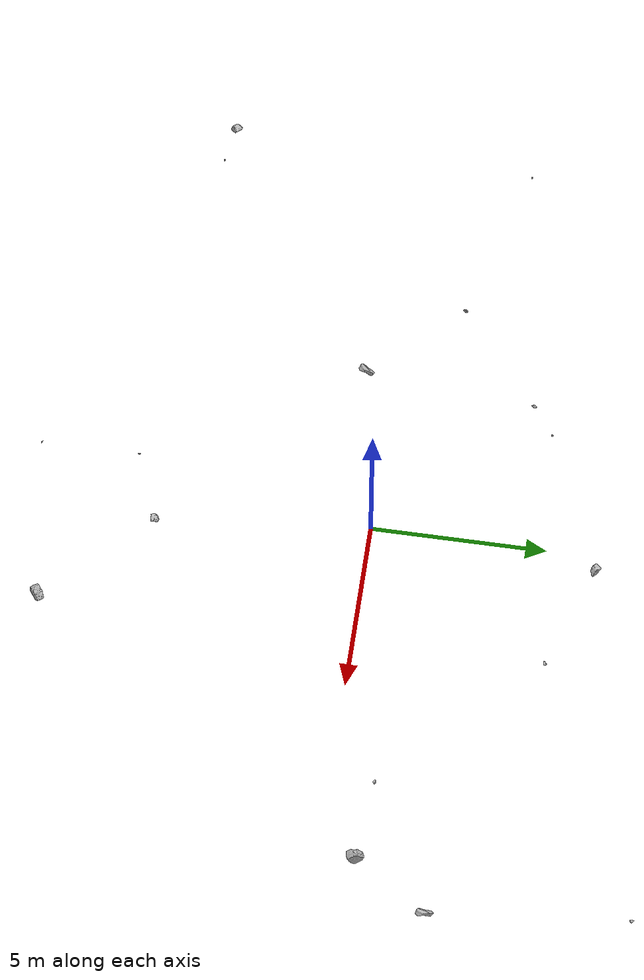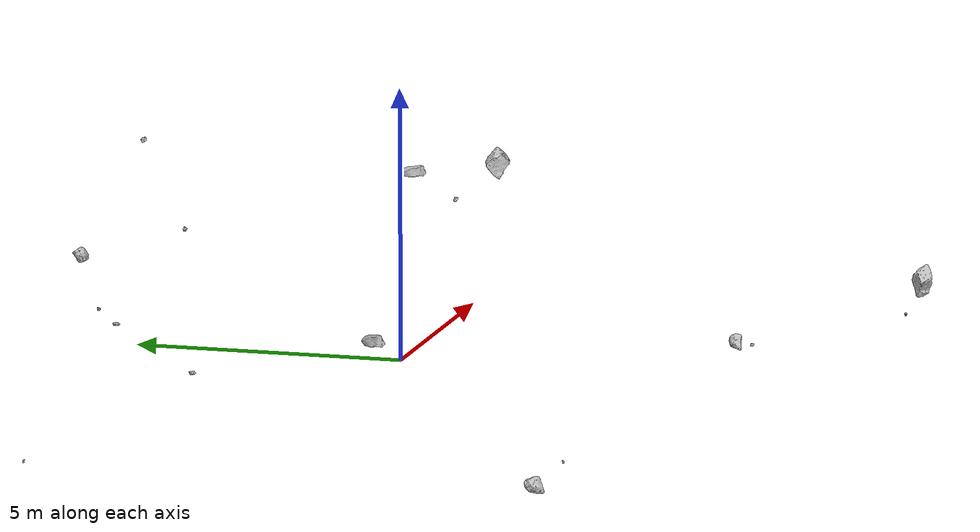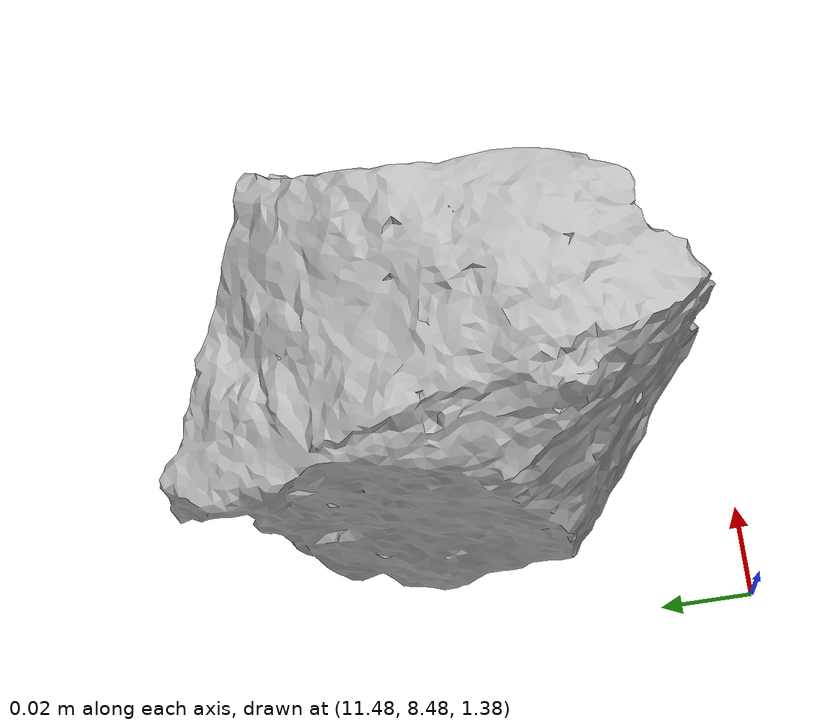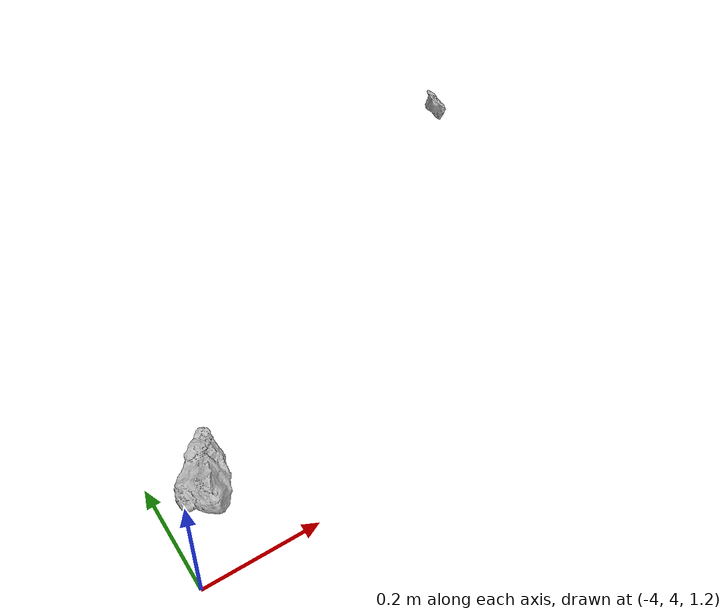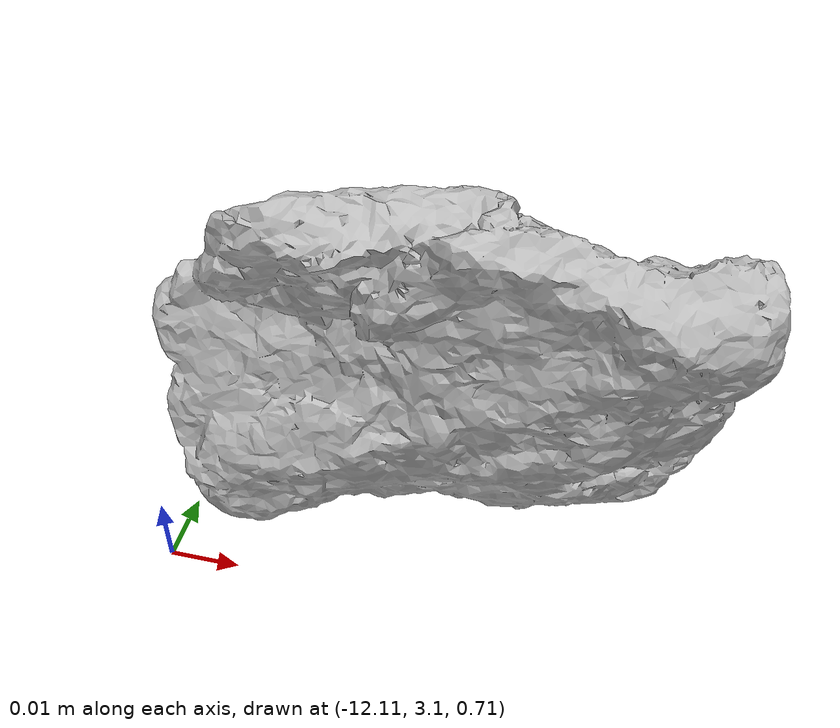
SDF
<sdf version="1.7">
 <world name="marsyard">
  <gravity>0 0 -9.81</gravity>
  <physics name="dart_physics" type="ignored">
   <max_step_size>0.003</max_step_size>
   <real_time_update_rate>333</real_time_update_rate>
   <real_time_factor>1.0</real_time_factor>
  </physics>
  <plugin filename="ignition-gazebo-physics-system" name="ignition::gazebo::systems::Physics"/>
  <plugin filename="ignition-gazebo-user-commands-system" name="ignition::gazebo::systems::UserCommands"/>
  <plugin filename="ignition-gazebo-scene-broadcaster-system" name="ignition::gazebo::systems::SceneBroadcaster"/>
  <plugin filename="ignition-gazebo-contact-system" name="ignition::gazebo::systems::Contact"/>
  <plugin filename="ignition-gazebo-sensors-system" name="ignition::gazebo::systems::Sensors">
   <render_engine>ogre2</render_engine>
  </plugin>
  <plugin filename="ignition-gazebo-imu-system" name="ignition::gazebo::systems::Imu"/>
  <plugin filename="ignition-gazebo-magnetometer-system" name="ignition::gazebo::systems::Magnetometer"/>
  <scene>
   <ambient>0.95 0.95 0.95 1</ambient>
   <background>0.70 0.70 0.70 1</background>
   <shadows>false</shadows>
  </scene>
  <light type="directional" name="sun">
   <cast_shadows>false</cast_shadows>
   <pose>0 0 30 0 0 0</pose>
   <diffuse>1 1 1 1</diffuse>
   <specular>0.15 0.15 0.15 1</specular>
   <direction>-0.35 0.1 -0.93</direction>
  </light>
  <model name="Rock_1">
   <static>true</static>
   <pose>8.3949 1.2759 1.2487 0.0000 0.0000 2.5398</pose>
   <link name="link">
    <visual name="visual">
     <geometry><mesh><uri>package://rock_generator/rocks_ws/rock_9/meshes/rock_9.obj</uri></mesh></geometry>
    </visual>
   </link>
  </model>
  <model name="Rock_2">
   <static>true</static>
   <pose>11.5206 8.5402 1.4487 0.0000 0.0000 -1.7034</pose>
   <link name="link">
    <visual name="visual">
     <geometry><mesh><uri>package://rock_generator/rocks_ws/rock_9/meshes/rock_9.obj</uri></mesh></geometry>
    </visual>
   </link>
  </model>
  <model name="Rock_3">
   <static>true</static>
   <pose>-3.0098 4.7396 1.3251 0.0000 0.0000 -1.9268</pose>
   <link name="link">
    <visual name="visual">
     <geometry><mesh><uri>package://rock_generator/rocks_ws/rock_5/meshes/rock_5.obj</uri></mesh></geometry>
    </visual>
    <collision name="collision">
     <geometry><mesh><uri>package://rock_generator/rocks_ws/rock_5/meshes/rock_5.obj</uri></mesh></geometry>
    </collision>
   </link>
  </model>
  <model name="Rock_4">
   <static>true</static>
   <pose>11.8126 3.0989 1.0200 0.0000 0.0000 -1.5470</pose>
   <link name="link">
    <visual name="visual">
     <geometry><mesh><uri>package://rock_generator/rocks_ws/rock_4/meshes/rock_4.obj</uri></mesh></geometry>
    </visual>
    <collision name="collision">
     <geometry><mesh><uri>package://rock_generator/rocks_ws/rock_4/meshes/rock_4.obj</uri></mesh></geometry>
    </collision>
   </link>
  </model>
  <model name="Rock_5">
   <static>true</static>
   <pose>4.1865 5.3841 1.2875 0.0000 0.0000 -2.6912</pose>
   <link name="link">
    <visual name="visual">
     <geometry><mesh><uri>package://rock_generator/rocks_ws/rock_6/meshes/rock_6.obj</uri></mesh></geometry>
    </visual>
    <collision name="collision">
     <geometry><mesh><uri>package://rock_generator/rocks_ws/rock_6/meshes/rock_6.obj</uri></mesh></geometry>
    </collision>
   </link>
  </model>
  <model name="Rock_8">
   <static>true</static>
   <pose>-12.0715 3.1136 0.7454 0.0000 0.0000 0.0661</pose>
   <link name="link">
    <visual name="visual">
     <geometry><mesh><uri>package://rock_generator/rocks_ws/rock_5/meshes/rock_5.obj</uri></mesh></geometry>
    </visual>
   </link>
  </model>
  <model name="Rock_9">
   <static>true</static>
   <pose>-3.9240 4.1240 1.2742 0.0000 0.0000 1.0582</pose>
   <link name="link">
    <visual name="visual">
     <geometry><mesh><uri>package://rock_generator/rocks_ws/rock_6/meshes/rock_6.obj</uri></mesh></geometry>
    </visual>
   </link>
  </model>
  <model name="Rock_10">
   <static>true</static>
   <pose>-0.5903 -9.4459 1.5285 0.0000 0.0000 2.7843</pose>
   <link name="link">
    <visual name="visual">
     <geometry><mesh><uri>package://rock_generator/rocks_ws/rock_5/meshes/rock_5.obj</uri></mesh></geometry>
    </visual>
   </link>
  </model>
  <model name="Rock_11">
   <static>true</static>
   <pose>10.8813 1.0946 1.4779 0.0000 0.0000 1.9066</pose>
   <link name="link">
    <visual name="visual">
     <geometry><mesh><uri>package://rock_generator/rocks_ws/rock_1/meshes/rock_1.obj</uri></mesh></geometry>
    </visual>
   </link>
  </model>
  <model name="Rock_12">
   <static>true</static>
   <pose>-0.9711 -6.7548 0.8998 0.0000 0.0000 -1.6210</pose>
   <link name="link">
    <visual name="visual">
     <geometry><mesh><uri>package://rock_generator/rocks_ws/rock_5/meshes/rock_5.obj</uri></mesh></geometry>
    </visual>
    <collision name="collision">
     <geometry><mesh><uri>package://rock_generator/rocks_ws/rock_5/meshes/rock_5.obj</uri></mesh></geometry>
    </collision>
   </link>
  </model>
  <model name="Rock_13">
   <static>true</static>
   <pose>1.1920 6.4878 1.3317 0.0000 0.0000 2.3362</pose>
   <link name="link">
    <visual name="visual">
     <geometry><mesh><uri>package://rock_generator/rocks_ws/rock_3/meshes/rock_3.obj</uri></mesh></geometry>
    </visual>
    <collision name="collision">
     <geometry><mesh><uri>package://rock_generator/rocks_ws/rock_3/meshes/rock_3.obj</uri></mesh></geometry>
    </collision>
   </link>
  </model>
  <model name="Rock_15">
   <static>true</static>
   <pose>4.0408 -8.8869 1.1089 0.0000 0.0000 0.7387</pose>
   <link name="link">
    <visual name="visual">
     <geometry><mesh><uri>package://rock_generator/rocks_ws/rock_1/meshes/rock_1.obj</uri></mesh></geometry>
    </visual>
    <collision name="collision">
     <geometry><mesh><uri>package://rock_generator/rocks_ws/rock_1/meshes/rock_1.obj</uri></mesh></geometry>
    </collision>
   </link>
  </model>
  <model name="Rock_17">
   <static>true</static>
   <pose>-4.4395 -0.7110 1.3579 0.0000 0.0000 -2.0158</pose>
   <link name="link">
    <visual name="visual">
     <geometry><mesh><uri>package://rock_generator/rocks_ws/rock_4/meshes/rock_4.obj</uri></mesh></geometry>
    </visual>
   </link>
  </model>
  <model name="Rock_18">
   <static>true</static>
   <pose>-12.3300 -5.8372 0.9515 0.0000 0.0000 0.9100</pose>
   <link name="link">
    <visual name="visual">
     <geometry><mesh><uri>package://rock_generator/rocks_ws/rock_3/meshes/rock_3.obj</uri></mesh></geometry>
    </visual>
   </link>
  </model>
  <model name="Rock_19">
   <static>true</static>
   <pose>-6.8878 1.7890 1.1834 0.0000 0.0000 1.0096</pose>
   <link name="link">
    <visual name="visual">
     <geometry><mesh><uri>package://rock_generator/rocks_ws/rock_6/meshes/rock_6.obj</uri></mesh></geometry>
    </visual>
    <collision name="collision">
     <geometry><mesh><uri>package://rock_generator/rocks_ws/rock_6/meshes/rock_6.obj</uri></mesh></geometry>
    </collision>
   </link>
  </model>
  <model name="Rock_20">
   <static>true</static>
   <pose>0.8270 -6.1353 0.4993 0.0000 0.0000 0.1900</pose>
   <link name="link">
    <visual name="visual">
     <geometry><mesh><uri>package://rock_generator/rocks_ws/rock_3/meshes/rock_3.obj</uri></mesh></geometry>
    </visual>
   </link>
  </model>
  <model name="Rock_21">
   <static>true</static>
   <pose>-11.1417 -5.9410 1.0859 0.0000 0.0000 -3.0885</pose>
   <link name="link">
    <visual name="visual">
     <geometry><mesh><uri>package://rock_generator/rocks_ws/rock_5/meshes/rock_5.obj</uri></mesh></geometry>
    </visual>
    <collision name="collision">
     <geometry><mesh><uri>package://rock_generator/rocks_ws/rock_5/meshes/rock_5.obj</uri></mesh></geometry>
    </collision>
   </link>
  </model>
 </world>
</sdf>
